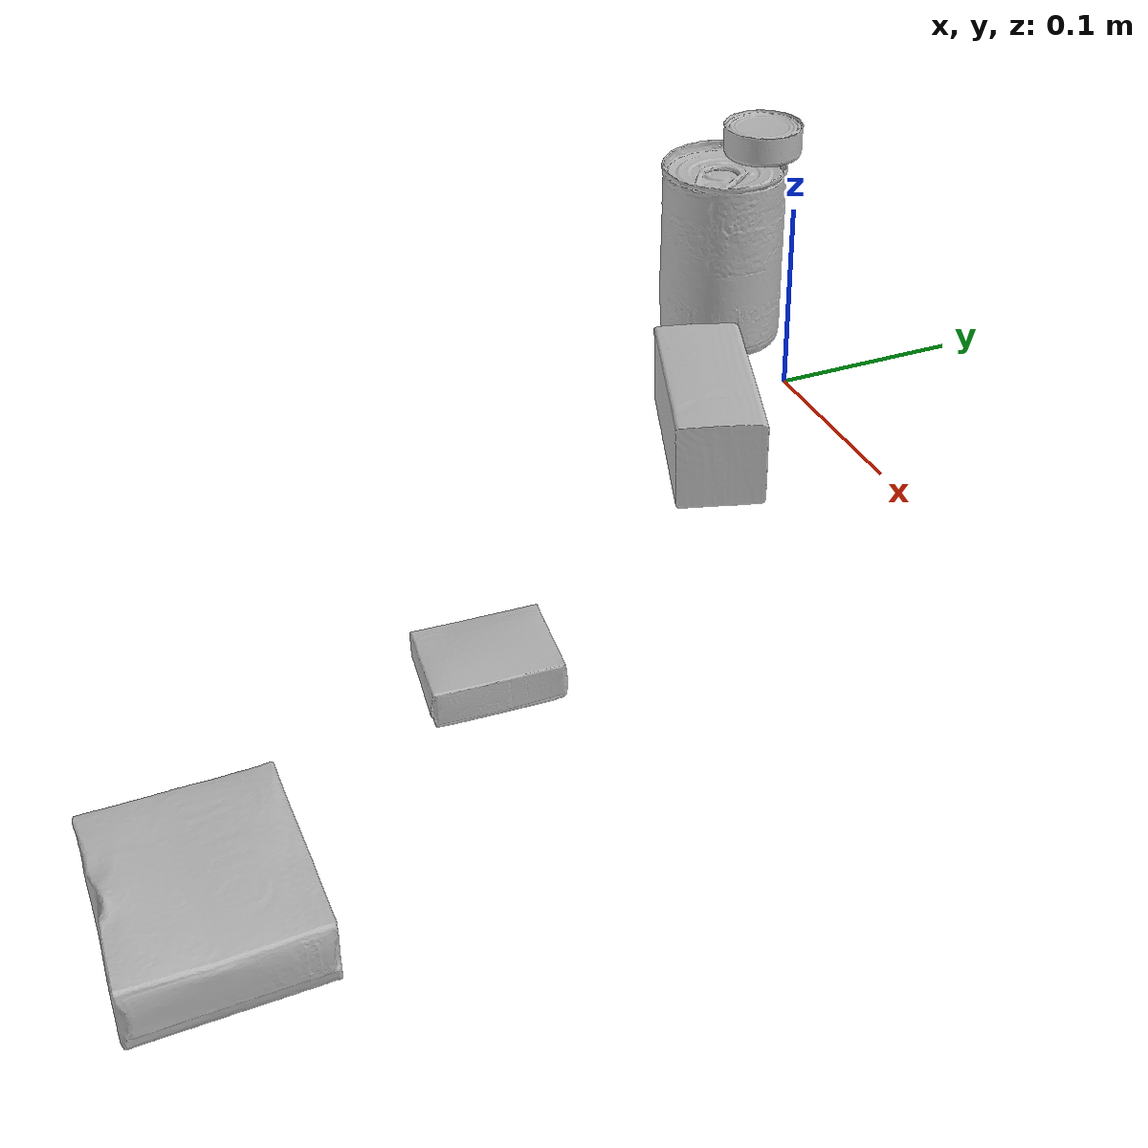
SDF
<sdf version="1.4">
  <world name="default">
    <light name="light1" type="point">
      <pose>0 0 1 0 0 0</pose>
      <diffuse>3 3 3 1</diffuse>
      <specular>3 3 3 1</specular>
    </light>
    <light name="light2" type="point">
      <pose>0 0.5 2 0 0 0</pose>
      <diffuse>1 1 1 1</diffuse>
      <specular>1 1 1 1</specular>
    </light>
    <light name="light3" type="point">
      <pose>0 0.5 2 0 0 0</pose>
      <diffuse>3 3 3 1</diffuse>
      <specular>3 3 3 1</specular>
    </light>
    <scene>
      <ambient>0.7 0.7 0.7</ambient>
    </scene>
    <model name="box1">
      <link name="link_box1">
        <collision name="default">
          <geometry>
            <mesh>
              <uri>model://pudding_box/collision_meshes/collision.obj</uri>
              <scale>0.5 0.5 0.5</scale>
            </mesh>
          </geometry>
          <surface>
            <friction>
              <ode>
                <mu>0.5</mu>
                <mu2>0.5</mu2>
              </ode>
            </friction>
          <contact>
        <ode>
            <max_vel>0</max_vel>
            <min_depth>0.0001</min_depth>
            <kp>1e8</kp>
        </ode>
    </contact></surface>
        </collision>
        <visual name="default">
          <geometry>
            <mesh>
              <uri>model://pudding_box/visual_meshes/visual.dae</uri>
              <scale>0.5 0.5 0.5</scale>
            </mesh>
          </geometry>
        </visual>
        <inertial>
          <mass>0.049221161752939224</mass>
          <pose>0.00024474109522998333 0.00040339428232982755 -0.0002594413817860186 0.005213101772454675 -0.006603800120423707 0.020079827019105066</pose>
          <inertia>
            <ixx>1.3910499e-05</ixx>
            <iyy>9.3590825e-06</iyy>
            <izz>2.0542482e-05</izz>
            <ixy>0</ixy>
            <ixz>0</ixz>
            <iyz>0</iyz>
          </inertia>
        </inertial>
      </link>
      <pose>0.17155711352825165 -0.23046447336673737 0.009862902574241161 0.022348567559497934 -0.011391638623221172 -0.10718031138725867</pose>
    </model>
    <model name="box2">
      <link name="link_box2">
        <collision name="default">
          <geometry>
            <mesh>
              <uri>model://gelatin_box/collision_meshes/collision.obj</uri>
              <scale>1.0 1.0 1.0</scale>
            </mesh>
          </geometry>
          <surface>
            <friction>
              <ode>
                <mu>0.5</mu>
                <mu2>0.5</mu2>
              </ode>
            </friction>
          <contact>
        <ode>
            <max_vel>0</max_vel>
            <min_depth>0.0001</min_depth>
            <kp>1e8</kp>
        </ode>
    </contact></surface>
        </collision>
        <visual name="default">
          <geometry>
            <mesh>
              <uri>model://gelatin_box/visual_meshes/visual.dae</uri>
              <scale>1.0 1.0 1.0</scale>
            </mesh>
          </geometry>
        </visual>
        <inertial>
          <mass>0.1975366622209549</mass>
          <pose>0.000431961816502735 0.00011156871187267825 -0.00036403207923285663 -0.0010503719683328595 -0.0047558182256164224 0.016440557608480007</pose>
          <inertia>
            <ixx>0.00013944478</ixx>
            <iyy>9.960467e-05</iyy>
            <izz>0.00021226601</izz>
            <ixy>0</ixy>
            <ixz>0</ixz>
            <iyz>0</iyz>
          </inertia>
        </inertial>
      </link>
      <pose>0.2543591558933258 -0.3624047338962555 0.01516831573098898 0.005597427481269428 -0.0073045481844518645 -1.5797307487172059</pose>
    </model>
    <model name="box3">
      <link name="link_box3">
        <collision name="default">
          <geometry>
            <mesh>
              <uri>model://wood_block/collision_meshes/collision.obj</uri>
              <scale>0.5 0.5 0.5</scale>
            </mesh>
          </geometry>
          <surface>
            <friction>
              <ode>
                <mu>0.5</mu>
                <mu2>0.5</mu2>
              </ode>
            </friction>
          <contact>
        <ode>
            <max_vel>0</max_vel>
            <min_depth>0.0001</min_depth>
            <kp>1e8</kp>
        </ode>
    </contact></surface>
        </collision>
        <visual name="default">
          <geometry>
            <mesh>
              <uri>model://wood_block/visual_meshes/visual.dae</uri>
              <scale>0.5 0.5 0.5</scale>
            </mesh>
          </geometry>
        </visual>
        <inertial>
          <mass>0.2799808979034424</mass>
          <pose>-2.9066577553749084e-06 -0.000285404734313488 0.00013204291462898254 -0.05220811074253327 -0.005192695744074178 -0.0068613776969266935</pose>
          <inertia>
            <ixx>9.3664195e-05</ixx>
            <iyy>0.0002958853</iyy>
            <izz>0.00029477844</izz>
            <ixy>0</ixy>
            <ixz>0</ixz>
            <iyz>0</iyz>
          </inertia>
        </inertial>
      </link>
      <pose>0.04550635814666748 -0.06887968629598618 0.02262927033007145 -0.005208424793474747 0.005718728930918577 2.8124166067850234</pose>
    </model>
    <model name="can1">
      <link name="link_can1">
        <collision name="default">
          <geometry>
            <mesh>
              <uri>model://tomato_soup_can/collision_meshes/collision.obj</uri>
              <scale>1.0 1.0 1.0</scale>
            </mesh>
          </geometry>
          <surface>
            <friction>
              <ode>
                <mu>0.5</mu>
                <mu2>0.5</mu2>
              </ode>
            </friction>
          <contact>
        <ode>
            <max_vel>0</max_vel>
            <min_depth>0.0001</min_depth>
            <kp>1e8</kp>
        </ode>
    </contact></surface>
        </collision>
        <visual name="default">
          <geometry>
            <mesh>
              <uri>model://tomato_soup_can/visual_meshes/visual.dae</uri>
              <scale>1.0 1.0 1.0</scale>
            </mesh>
          </geometry>
        </visual>
        <inertial>
          <mass>0.35683923959732056</mass>
          <pose>0.00012652271834667772 0.00010805513738887385 -0.0017973982030525804 0.007020067402313596 0.00042299257688944205 -0.009903281374499336</pose>
          <inertia>
            <ixx>0.0003912439</ixx>
            <iyy>0.00038898273</iyy>
            <izz>0.00020277809</izz>
            <ixy>0</ixy>
            <ixz>0</ixz>
            <iyz>0</iyz>
          </inertia>
        </inertial>
      </link>
      <pose>-0.06525905430316925 -0.006573019083589315 0.05127400532364845 -3.6456927057116304e-07 -5.217300849306567e-07 0.5077133247210829</pose>
    </model>
    <model name="can2">
      <link name="link_can2">
        <collision name="default">
          <geometry>
            <mesh>
              <uri>model://tuna_fish_can/collision_meshes/collision.obj</uri>
              <scale>0.5 0.5 0.5</scale>
            </mesh>
          </geometry>
          <surface>
            <friction>
              <ode>
                <mu>0.5</mu>
                <mu2>0.5</mu2>
              </ode>
            </friction>
          <contact>
        <ode>
            <max_vel>0</max_vel>
            <min_depth>0.0001</min_depth>
            <kp>1e8</kp>
        </ode>
    </contact></surface>
        </collision>
        <visual name="default">
          <geometry>
            <mesh>
              <uri>model://tuna_fish_can/visual_meshes/visual.dae</uri>
              <scale>0.5 0.5 0.5</scale>
            </mesh>
          </geometry>
        </visual>
        <inertial>
          <mass>0.011508840136229992</mass>
          <pose>-2.0362092982395552e-05 -7.256176559167216e-06 -0.0005269026150926948 -0.0017944756095399476 0.0001716207335623094 0.24053890436657652</pose>
          <inertia>
            <ixx>1.5560124e-06</ixx>
            <iyy>1.5495272e-06</iyy>
            <izz>2.662559e-06</izz>
            <ixy>0</ixy>
            <ixz>0</ixz>
            <iyz>0</iyz>
          </inertia>
        </inertial>
      </link>
      <pose>-0.06864579021930695 0.017862645909190178 0.11081226915121078 0.0006241645915985119 0.003663049673238815 -0.7047986026760482</pose>
    </model>
  <physics type="ode">
      <max_contacts>50</max_contacts>
      <ode>
        <solver>
          <type>quick</type>
          <iters>75</iters>
        </solver>
        <constraints>
          <contact_max_correcting_vel>0</contact_max_correcting_vel>
          <contact_surface_layer>0</contact_surface_layer>
        </constraints>
      </ode>
    </physics></world>
</sdf>
